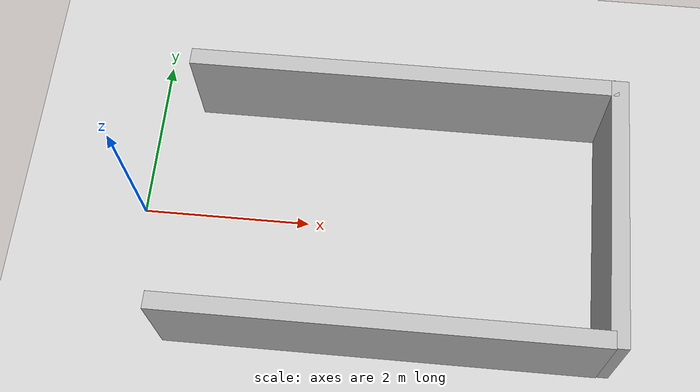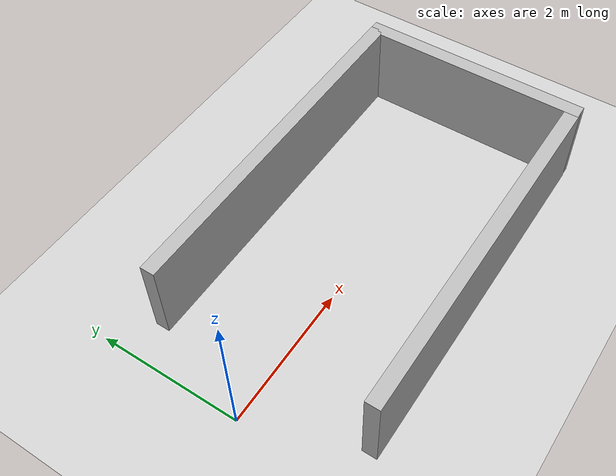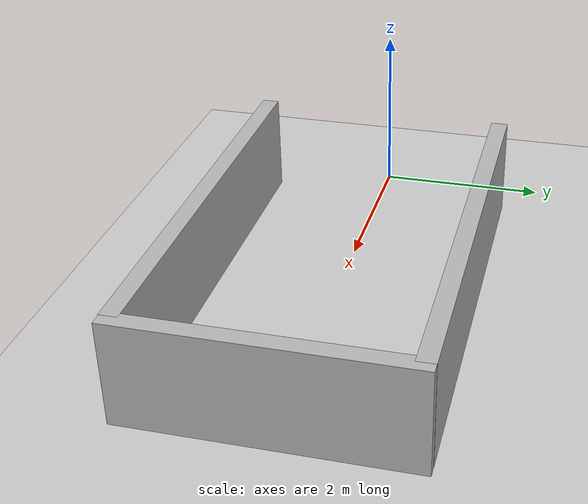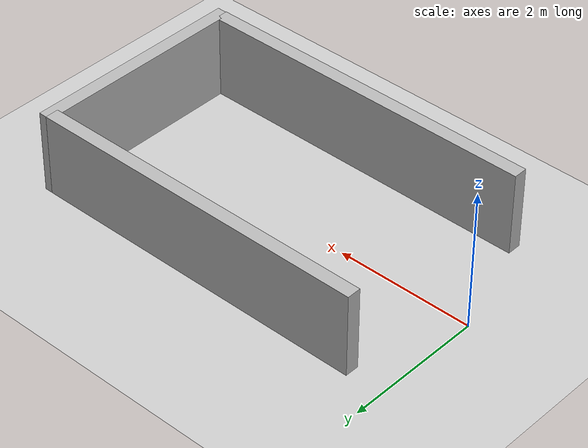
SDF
<?xml version="1.0"?>
<sdf version="1.6">
  <world name="v2-04g-p1-support-s5294">
    <gravity>0 0 -9.81</gravity>
    <physics name="v2_deterministic" type="ode">
      <max_step_size>0.002</max_step_size>
      <real_time_update_rate>500</real_time_update_rate>
    </physics>
    <include>
      <uri>model://sun</uri>
    </include>
    <include>
      <uri>model://ground_plane</uri>
    </include>
    <model name="bay-left">
      <static>true</static>
      <pose>3.001989639 1.517858621 0.600000000 0 0 0.000628487</pose>
      <link name="link">
        <collision name="collision">
          <geometry>
            <box>
              <size>5.000000 0.200000 1.200000</size>
            </box>
          </geometry>
        </collision>
        <visual name="visual">
          <geometry>
            <box>
              <size>5.000000 0.200000 1.200000</size>
            </box>
          </geometry>
        </visual>
      </link>
    </model>
    <model name="bay-right">
      <static>true</static>
      <pose>2.979573684 -1.490928008 0.600000000 0 0 0.000338198</pose>
      <link name="link">
        <collision name="collision">
          <geometry>
            <box>
              <size>5.000000 0.200000 1.200000</size>
            </box>
          </geometry>
        </collision>
        <visual name="visual">
          <geometry>
            <box>
              <size>5.000000 0.200000 1.200000</size>
            </box>
          </geometry>
        </visual>
      </link>
    </model>
    <model name="bay-back">
      <static>true</static>
      <pose>5.517499543 0.017977390 0.600000000 0 0 -0.000586019</pose>
      <link name="link">
        <collision name="collision">
          <geometry>
            <box>
              <size>0.200000 3.200000 1.200000</size>
            </box>
          </geometry>
        </collision>
        <visual name="visual">
          <geometry>
            <box>
              <size>0.200000 3.200000 1.200000</size>
            </box>
          </geometry>
        </visual>
      </link>
    </model>
  </world>
</sdf>
